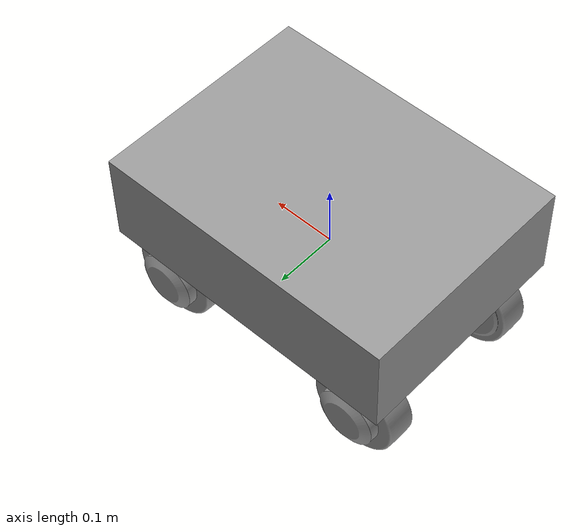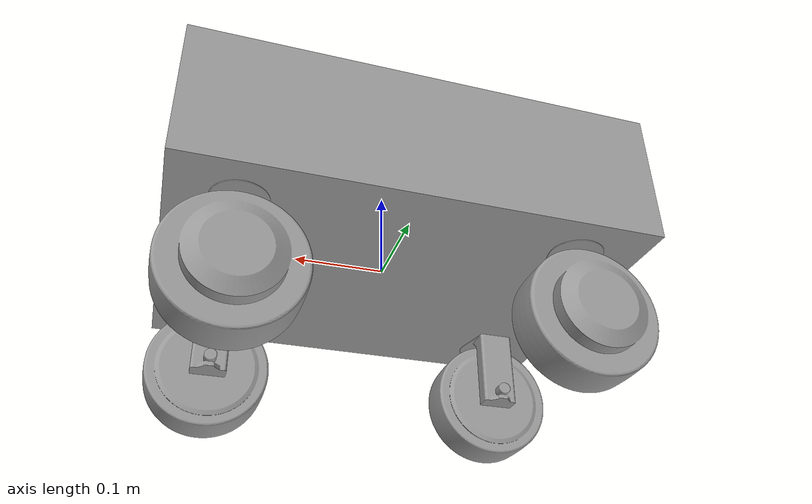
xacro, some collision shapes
<?xml version="1.0"?>
<robot name="diff_drive" xmlns:xacro="http://www.ros.org/wiki/xacro">

  <xacro:arg name="namespace" default="" />

  <material name="orange">
    <color rgba="0.8 0.4 0.0 1.0"/>
  </material>

  <material name="black">
    <color rgba="0 0 0 1.0"/>
  </material>

  <material name="white">
    <color rgba="1 1 1 1.0"/>
  </material>

  <link name="vrtk_link">
    <visual>
      <origin xyz="0.0 0.0 0.0"/>
      <geometry>
        <cylinder length="0.03" radius="0.02"/>
      </geometry>
      <material name="Red">
        <color rgba="1.0 0 0 1.0"/>
      </material>
    </visual>
  </link>

  <link name="base_footprint"/>

  <link name="rslidar"/>

  <link name="inertial_link">
    <inertial>
      <mass value="40"/>
      <origin xyz="0.0 0.0 0.0"/>
      <inertia ixx="2.288641" ixy="0" ixz="0" iyy="5.103976" iyz="0" izz="3.431465"/>
    </inertial>
  </link>

 <link name="base_link">
    <visual>
      <geometry>
        <mesh filename="package://fwmini_description/meshes/chassis.stl" scale="0.001 0.001 0.001"/>
      </geometry>
      <origin rpy="1.5707963267948963 0 -1.5707963267948963" xyz="0.0 0.0 0.0"/>
      <material name="gray">
        <color rgba="0.6 0.6 0.6 1.0"/>
      </material>
    </visual>
    <collision>
      <origin rpy="0 0 0" xyz="0.0 0.0 0.055"/>
      <geometry>
        <box size="0.49 0.36 0.15 " />
      </geometry>
    </collision>
  </link>

<!-- falang003 -->
  <link name="falang003">
    <visual>
      <geometry>
        <mesh filename="package://fwmini_description/meshes/falang003.stl" scale="0.001 0.001 0.001"/>
      </geometry>
      <origin rpy="1.5707963267948963 0 -1.5707963267948963" xyz="-0.175 0.125  0.026"/>
      <material name="gray">
        <color rgba="0.6 0.6 0.6 1.0"/>
      </material>
    </visual>
  </link>

  <!-- falang007 -->
  <link name="falang007">
    <visual>
      <geometry>
        <mesh filename="package://fwmini_description/meshes/falang007.stl" scale="0.001 0.001 0.001"/>
      </geometry>
      <origin rpy="1.5707963267948963 0 -1.5707963267948963" xyz="-0.175 -0.125  0.026"/>
      <material name="gray">
        <color rgba="0.6 0.6 0.6 1.0"/>
      </material>
    </visual>
  </link>

  <!-- falang011 -->
  <link name="falang011">
    <visual>
      <geometry>
        <mesh filename="package://fwmini_description/meshes/falang011.stl" scale="0.001 0.001 0.001"/>
      </geometry>
      <origin rpy="1.5707963267948963 0 -1.5707963267948963" xyz=" 0.175 0.125  0.026"/>
      <material name="gray">
        <color rgba="0.6 0.6 0.6 1.0"/>
      </material>
    </visual>
  </link>

  <!-- falang015 -->
  <link name="falang015">
    <visual>
      <geometry>
        <mesh filename="package://fwmini_description/meshes/falang015.stl" scale="0.001 0.001 0.001"/>
      </geometry>
      <origin rpy="1.5707963267948963 0 -1.5707963267948963" xyz="0.175 -0.125  0.026"/>
      <material name="gray">
        <color rgba="0.6 0.6 0.6 1.0"/>
      </material>
    </visual>
  </link>

 <!-- lunzi -->
  <link name="lunzi">
    <visual>
      <geometry>
        <mesh filename="package://fwmini_description/meshes/lunzi.stl" scale="0.001 0.001 0.001"/>
      </geometry>
      <origin rpy="0 -1.5707963267948963 0" xyz=" -0.175 0.1085 -0.099"/>
      <material name="gray">
        <color rgba="0.6 0.6 0.6 1.0"/>
      </material>
    </visual>
    <collision>
      <origin rpy="0 0 0" xyz="0.0 0.0 0.025"/>
      <geometry>
        <cylinder length="0.05" radius="0.07"/>
      </geometry>
    </collision>
  </link>

  <!-- lunzi002 -->
  <link name="lunzi002">
    <visual>
      <geometry>
        <mesh filename="package://fwmini_description/meshes/lunzi002.stl" scale="0.001 0.001 0.001"/>
      </geometry>
      <origin rpy="1.5707963267948963 0 -1.5707963267948963" xyz="-0.175 0.125  0.03"/>
      <material name="gray">
        <color rgba="0.6 0.6 0.6 1.0"/>
      </material>
    </visual>
  </link>
    <!-- lunzi004 -->
  <link name="lunzi004">
    <visual>
      <geometry>
        <mesh filename="package://fwmini_description/meshes/lunzi004.stl" scale="0.001 0.001 0.001"/>
      </geometry>
      <origin rpy="0 1.5707963267948963 0" xyz="0.175 0.1085 -0.099"/>
      <material name="gray">
        <color rgba="0.6 0.6 0.6 1.0"/>
      </material>
    </visual>
    <collision>
      <origin rpy="0 0 0" xyz="0.0 0.0 0.025"/>
      <geometry>
        <cylinder length="0.05" radius="0.07"/>
      </geometry>
    </collision>
  </link>
  <!-- lunzi006 -->
  <link name="lunzi006">
    <visual>
      <geometry>
        <mesh filename="package://fwmini_description/meshes/lunzi006.stl" scale="0.001 0.001 0.001"/>
      </geometry>
      <origin rpy="1.5707963267948963 0 -1.5707963267948963" xyz="-0.175 -0.125  0.03"/>
      <material name="gray">
        <color rgba="0.6 0.6 0.6 1.0"/>
      </material>
    </visual>
  </link>
  <!-- lunzi008 -->
  <link name="lunzi008">
    <visual>
      <geometry>
        <mesh filename="package://fwmini_description/meshes/lunzi008.stl" scale="0.001 0.001 0.001"/>
      </geometry>
      <origin rpy="0 -1.5707963267948963 0" xyz="0.175 0.1085 -0.099"/>
      <material name="gray">
        <color rgba="0.6 0.6 0.6 1.0"/>
      </material>
    </visual>
    <collision>
      <origin rpy="0 0 0" xyz="0.0 0.0 0.025"/>
      <geometry>
        <cylinder length="0.05" radius="0.07"/>
      </geometry>
    </collision>
  </link>
  <!-- lunzi010 -->
  <link name="lunzi010">
    <visual>
      <geometry>
        <mesh filename="package://fwmini_description/meshes/lunzi010.stl" scale="0.001 0.001 0.001"/>
      </geometry>
      <origin rpy="1.5707963267948963 0 -1.5707963267948963" xyz="0.175 0.125  0.03"/>
      <material name="gray">
        <color rgba="0.6 0.6 0.6 1.0"/>
      </material>
    </visual>
  </link>

  <!-- lunzi012 -->
  <link name="lunzi012">
    <visual>
      <geometry>
        <mesh filename="package://fwmini_description/meshes/lunzi012.stl" scale="0.001 0.001 0.001"/>
      </geometry>
      <origin rpy="0 1.5707963267948963 0" xyz="-0.175 0.1085 -0.099"/>
      <material name="gray">
        <color rgba="0.6 0.6 0.6 1.0"/>
      </material>
    </visual>
    <collision>
      <origin rpy="0 0 0" xyz=" 0.0 0.0 0.025"/>
      <geometry>
        <cylinder length="0.05" radius="0.07"/>
      </geometry>
    </collision>
  </link>
  <!-- lunzi014 -->
  <link name="lunzi014">
    <visual>
      <geometry>
        <mesh filename="package://fwmini_description/meshes/lunzi014.stl" scale="0.001 0.001 0.001"/>
      </geometry>
      <origin rpy="1.5707963267948963 0 -1.5707963267948963" xyz="0.175 -0.125  0.03"/>
      <material name="gray">
        <color rgba="0.6 0.6 0.6 1.0"/>
      </material>
    </visual>
  </link>

  <joint name="robot_to_falang003" type="fixed">
    <parent link="base_link"/>
    <child link="falang003"/>
    <origin rpy="0 0 0" xyz="0.17507 -0.125  -0.019"/>
    <axis xyz="0 0 1"/>
  </joint>

  <joint name="robot_to_falang007" type="fixed">
    <parent link="base_link"/>
    <child link="falang007"/>
    <origin rpy="0 0 0" xyz=" 0.17493 0.125  -0.019 "/>
    <axis xyz="0 0 1"/>
  </joint>

  <joint name="robot_to_falang011" type="fixed">
    <parent link="base_link"/>
    <child link="falang011"/>
    <origin rpy="0 0 0" xyz="-0.17493 -0.125  -0.019"/>
    <axis xyz="0 0 1"/>
  </joint>

  <joint name="robot_to_falang015" type="fixed">
    <parent link="base_link"/>
    <child link="falang015"/>
    <origin rpy="0 0 0" xyz="-0.17507 0.125  -0.019  "/>
    <axis xyz="0 0 1"/>
  </joint>

  <joint name="falang003_to_lunzi002" type="fixed">
    <parent link="falang003"/>
    <child link="lunzi002"/>
    <origin rpy="0 0 0" xyz="0.0 0.0 0.0"/>
    <axis xyz="0 0 1"/>
  </joint>

  <joint name="falang007_to_lunzi006" type="fixed">
    <parent link="falang007"/>
    <child link="lunzi006"/>
    <origin rpy="0 0 0" xyz="0.0 0.0 0.00"/>
    <axis xyz="0 0 1"/>
  </joint>

  <joint name="falang011_to_lunzi010" type="fixed">
    <parent link="falang011"/>
    <child link="lunzi010"/>
    <origin rpy="0 0 0" xyz="0.0 0.0 0.00"/>
    <axis xyz="0 0 1"/>
  </joint>

    <joint name="falang015_to_lunzi014" type="fixed">
    <parent link="falang015"/>
    <child link="lunzi014"/>
    <origin rpy="0 0 0" xyz="0.0 0.0 0.00"/>
    <axis xyz="0 0 1"/>
  </joint>

  <joint name="lunzi002_to_lunzi" type="fixed">
    <parent link="lunzi002"/>
    <child link="lunzi"/>
    <origin rpy="1.5707963267948963 0 0" xyz=" 0.0 0.027 -0.077"/>
    <axis xyz="0 0 1"/>
  </joint>

  <joint name="lunzi006_to_lunzi004" type="fixed">
    <parent link="lunzi006"/>
    <child link="lunzi004"/>
    <origin rpy="-1.5707963267948963 0 0" xyz=" 0.0 -0.027  -0.077"/>
    <axis xyz="0 0 1"/>
  </joint>

  <joint name="lunzi010_to_lunzi008" type="fixed">
    <parent link="lunzi010"/>
    <child link="lunzi008"/>
    <origin rpy="1.5707963267948963 0 0" xyz=" 0.0 0.027  -0.077"/>
    <axis xyz="0 0 1"/>
  </joint>

  <joint name="lunzi014_to_lunzi012" type="fixed">
    <parent link="lunzi014"/>
    <child link="lunzi012"/>
    <origin rpy="-1.5707963267948963 0 0" xyz="0.0 -0.027  -0.077"/>
    <axis xyz="0 0 1"/>
  </joint>

  <joint name="vrtk_base_joint" type="fixed">
    <parent link="vrtk_link"/>
    <child link="base_link"/>
    <origin xyz="0.0 0.0 0.0" rpy="0 0 0"/>
  </joint>

  <joint name="base_rslidar_joint" type="fixed">
    <parent link="base_link"/>
    <child link="rslidar"/>
    <origin xyz="0.0 0.0 0.02" rpy="0 0 0"/>
  </joint>

  <joint name="base_footprint_joint" type="fixed">
    <origin rpy="0 0 0" xyz="0 0 -0.23479"/>
    <parent link="base_link"/>
    <child link="base_footprint"/>
  </joint>

  <joint name="inertial_joint" type="fixed">
    <origin rpy="0 0 0" xyz="0 0 0"/>
    <parent link="base_link"/>
    <child link="inertial_link"/>
  </joint>

  <ros2_control name="GazeboSimSystem" type="system">
    <hardware>
      <plugin>gz_ros2_control/GazeboSimSystem</plugin>
    </hardware>
    <joint name="falang003_to_lunzi002">
        <command_interface name="position">
            <param name="min">-1000</param>
            <param name="max">1000</param>
        </command_interface>
        <command_interface name="velocity">
            <param name="min">-1000</param>
            <param name="max">1000</param>
        </command_interface>
        <command_interface name="effort">
            <param name="min">-1000</param>
            <param name="max">1000</param>
        </command_interface>
        <state_interface name="position"/>
        <state_interface name="velocity"/>
        <state_interface name="effort"/>
    </joint>
    <joint name="lunzi002_to_lunzi">
        <command_interface name="position">
            <param name="min">-1000</param>
            <param name="max">1000</param>
        </command_interface>
        <command_interface name="velocity">
            <param name="min">-1000</param>
            <param name="max">1000</param>
        </command_interface>
        <command_interface name="effort">
            <param name="min">-1000</param>
            <param name="max">1000</param>
        </command_interface>
        <state_interface name="position"/>
        <state_interface name="velocity"/>
        <state_interface name="effort"/>
    </joint>
    <joint name="falang007_to_lunzi006">
        <command_interface name="position">
            <param name="min">-1000</param>
            <param name="max">1000</param>
        </command_interface>
        <command_interface name="velocity">
            <param name="min">-1000</param>
            <param name="max">1000</param>
        </command_interface>
        <command_interface name="effort">
            <param name="min">-1000</param>
            <param name="max">1000</param>
        </command_interface>
        <state_interface name="position"/>
        <state_interface name="velocity"/>
        <state_interface name="effort"/>
    </joint>
    <joint name="lunzi006_to_lunzi004">
        <command_interface name="position">
            <param name="min">-1000</param>
            <param name="max">1000</param>
        </command_interface>
        <command_interface name="velocity">
            <param name="min">-1000</param>
            <param name="max">1000</param>
        </command_interface>
        <command_interface name="effort">
            <param name="min">-1000</param>
            <param name="max">1000</param>
        </command_interface>
        <state_interface name="position"/>
        <state_interface name="velocity"/>
        <state_interface name="effort"/>
    </joint>
    <joint name="falang011_to_lunzi010">
        <command_interface name="position">
            <param name="min">-1000</param>
            <param name="max">1000</param>
        </command_interface>
        <command_interface name="velocity">
            <param name="min">-1000</param>
            <param name="max">1000</param>
        </command_interface>
        <command_interface name="effort">
            <param name="min">-1000</param>
            <param name="max">1000</param>
        </command_interface>
        <state_interface name="position"/>
        <state_interface name="velocity"/>
        <state_interface name="effort"/>
    </joint>
    <joint name="lunzi010_to_lunzi008">
        <command_interface name="position">
            <param name="min">-1000</param>
            <param name="max">1000</param>
        </command_interface>
        <command_interface name="velocity">
            <param name="min">-1000</param>
            <param name="max">1000</param>
        </command_interface>
        <command_interface name="effort">
            <param name="min">-1000</param>
            <param name="max">1000</param>
        </command_interface>
        <state_interface name="position"/>
        <state_interface name="velocity"/>
        <state_interface name="effort"/>
    </joint>
    <joint name="falang015_to_lunzi014">
        <command_interface name="position">
            <param name="min">-1000</param>
            <param name="max">1000</param>
        </command_interface>
        <command_interface name="velocity">
            <param name="min">-1000</param>
            <param name="max">1000</param>
        </command_interface>
        <command_interface name="effort">
            <param name="min">-1000</param>
            <param name="max">1000</param>
        </command_interface>
        <state_interface name="position"/>
        <state_interface name="velocity"/>
        <state_interface name="effort"/>
    </joint>
    <joint name="lunzi014_to_lunzi012">
        <command_interface name="position">
            <param name="min">-1000</param>
            <param name="max">1000</param>
        </command_interface>
        <command_interface name="velocity">
            <param name="min">-1000</param>
            <param name="max">1000</param>
        </command_interface>
        <command_interface name="effort">
            <param name="min">-1000</param>
            <param name="max">1000</param>
        </command_interface>
        <state_interface name="position"/>
        <state_interface name="velocity"/>
        <state_interface name="effort"/>
    </joint>
  </ros2_control>

  <gazebo>
    <!-- Joint state publisher -->
    <plugin filename="gz_ros2_control-system" name="gz_ros2_control::GazeboSimROS2ControlPlugin">
      <ros>
        <namespace>$(arg namespace)</namespace>
      </ros>
      <parameters>$(find fwmini_description)/config/diff_drive_controller.yaml</parameters>
    </plugin>
  </gazebo>

</robot>
